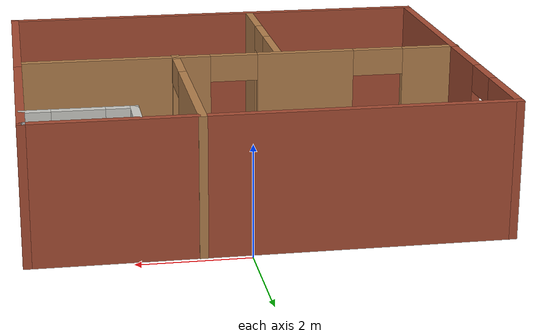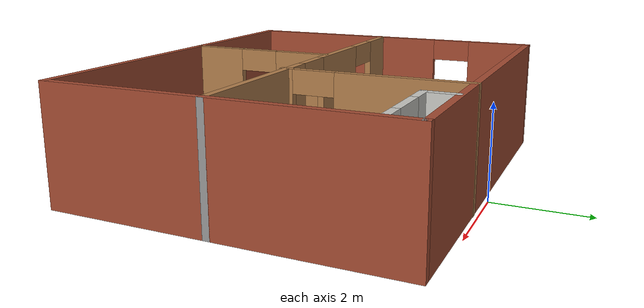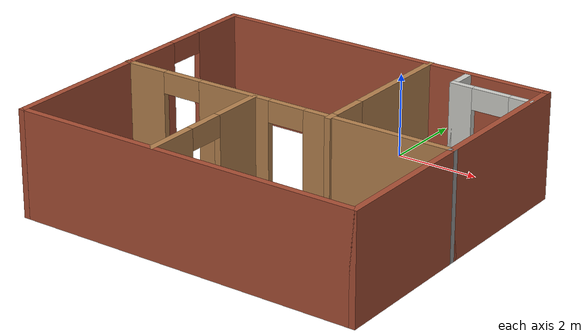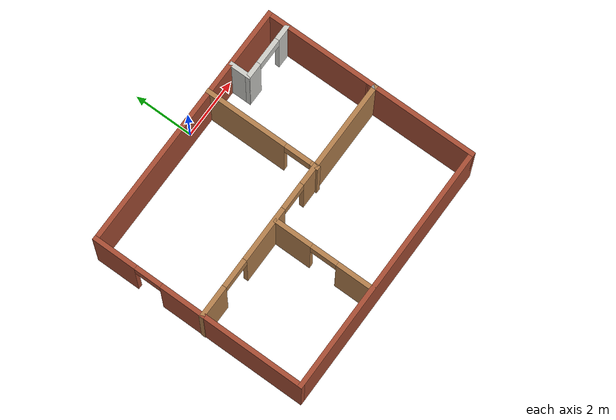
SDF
<?xml version='1.0'?>
<sdf version='1.7'>
  <model name='apartment_1'>
    <pose>-0.423745 -3.7226 0 0 -0 0</pose>
    <link name='Wall_0'>
      <pose>-4.16625 1.66258 0 0 -0 1.5708</pose>
      <visual name='Wall_0_Visual_0'>
        <pose>-1.19622 0 1.25 0 -0 0</pose>
        <geometry>
          <box>
            <size>1.53796 0.15 2.5</size>
          </box>
        </geometry>
        <material>
          <script>
            <uri>file://media/materials/scripts/gazebo.material</uri>
            <name>Gazebo/Bricks</name>
          </script>
          <ambient>1 1 1 1</ambient>
        </material>
        <meta>
          <layer>0</layer>
        </meta>
      </visual>
      <collision name='Wall_0_Collision_0'>
        <geometry>
          <box>
            <size>1.53796 0.15 2.5</size>
          </box>
        </geometry>
        <pose>-1.19622 0 1.25 0 -0 0</pose>
      </collision>
      <visual name='Wall_0_Visual_1'>
        <pose>1.21898 0 1.25 0 -0 0</pose>
        <geometry>
          <box>
            <size>1.49244 0.15 2.5</size>
          </box>
        </geometry>
        <material>
          <script>
            <uri>file://media/materials/scripts/gazebo.material</uri>
            <name>Gazebo/Bricks</name>
          </script>
          <ambient>1 1 1 1</ambient>
        </material>
        <meta>
          <layer>0</layer>
        </meta>
      </visual>
      <collision name='Wall_0_Collision_1'>
        <geometry>
          <box>
            <size>1.49244 0.15 2.5</size>
          </box>
        </geometry>
        <pose>1.21898 0 1.25 0 -0 0</pose>
      </collision>
      <visual name='Wall_0_Visual_2'>
        <pose>0.022761 0 2.25 0 -0 0</pose>
        <geometry>
          <box>
            <size>0.9 0.15 0.5</size>
          </box>
        </geometry>
        <material>
          <script>
            <uri>file://media/materials/scripts/gazebo.material</uri>
            <name>Gazebo/Bricks</name>
          </script>
          <ambient>1 1 1 1</ambient>
        </material>
        <meta>
          <layer>0</layer>
        </meta>
      </visual>
      <collision name='Wall_0_Collision_2'>
        <geometry>
          <box>
            <size>0.9 0.15 0.5</size>
          </box>
        </geometry>
        <pose>0.022761 0 2.25 0 -0 0</pose>
      </collision>
    </link>
    <link name='Wall_1'>
      <collision name='Wall_1_Collision'>
        <geometry>
          <box>
            <size>0.15 0.15 2.5</size>
          </box>
        </geometry>
        <pose>0 0 1.25 0 -0 0</pose>
      </collision>
      <visual name='Wall_1_Visual'>
        <pose>0 0 1.25 0 -0 0</pose>
        <geometry>
          <box>
            <size>0.15 0.15 2.5</size>
          </box>
        </geometry>
        <material>
          <script>
            <uri>file://media/materials/scripts/gazebo.material</uri>
            <name>Gazebo/Grey</name>
          </script>
          <ambient>1 1 1 1</ambient>
        </material>
        <meta>
          <layer>0</layer>
        </meta>
      </visual>
      <pose>-4.16625 3.5526 0 0 -0 0</pose>
    </link>
    <link name='Wall_10'>
      <collision name='Wall_10_Collision'>
        <geometry>
          <box>
            <size>0.75 0.15 2.5</size>
          </box>
        </geometry>
        <pose>0 0 1.25 0 -0 0</pose>
      </collision>
      <visual name='Wall_10_Visual'>
        <pose>0 0 1.25 0 -0 0</pose>
        <geometry>
          <box>
            <size>0.75 0.15 2.5</size>
          </box>
        </geometry>
        <material>
          <script>
            <uri>file://media/materials/scripts/gazebo.material</uri>
            <name>Gazebo/CeilingTiled</name>
          </script>
          <ambient>1 1 1 1</ambient>
        </material>
        <meta>
          <layer>0</layer>
        </meta>
      </visual>
      <pose>2.29458 3.20473 0 0 -0 -1.5708</pose>
    </link>
    <link name='Wall_11'>
      <pose>3.21957 2.90473 0 0 -0 0</pose>
      <visual name='Wall_11_Visual_0'>
        <pose>-0.719786 0 1.25 0 -0 0</pose>
        <geometry>
          <box>
            <size>0.560428 0.15 2.5</size>
          </box>
        </geometry>
        <material>
          <script>
            <uri>file://media/materials/scripts/gazebo.material</uri>
            <name>Gazebo/CeilingTiled</name>
          </script>
          <ambient>1 1 1 1</ambient>
        </material>
        <meta>
          <layer>0</layer>
        </meta>
      </visual>
      <collision name='Wall_11_Collision_0'>
        <geometry>
          <box>
            <size>0.560428 0.15 2.5</size>
          </box>
        </geometry>
        <pose>-0.719786 0 1.25 0 -0 0</pose>
      </collision>
      <visual name='Wall_11_Visual_1'>
        <pose>0.730214 0 1.25 0 -0 0</pose>
        <geometry>
          <box>
            <size>0.539572 0.15 2.5</size>
          </box>
        </geometry>
        <material>
          <script>
            <uri>file://media/materials/scripts/gazebo.material</uri>
            <name>Gazebo/CeilingTiled</name>
          </script>
          <ambient>1 1 1 1</ambient>
        </material>
        <meta>
          <layer>0</layer>
        </meta>
      </visual>
      <collision name='Wall_11_Collision_1'>
        <geometry>
          <box>
            <size>0.539572 0.15 2.5</size>
          </box>
        </geometry>
        <pose>0.730214 0 1.25 0 -0 0</pose>
      </collision>
      <visual name='Wall_11_Visual_2'>
        <pose>0.010428 0 2.25 0 -0 0</pose>
        <geometry>
          <box>
            <size>0.9 0.15 0.5</size>
          </box>
        </geometry>
        <material>
          <script>
            <uri>file://media/materials/scripts/gazebo.material</uri>
            <name>Gazebo/CeilingTiled</name>
          </script>
          <ambient>1 1 1 1</ambient>
        </material>
        <meta>
          <layer>0</layer>
        </meta>
      </visual>
      <collision name='Wall_11_Collision_2'>
        <geometry>
          <box>
            <size>0.9 0.15 0.5</size>
          </box>
        </geometry>
        <pose>0.010428 0 2.25 0 -0 0</pose>
      </collision>
    </link>
    <link name='Wall_13'>
      <pose>1.24132 1.63688 0 0 -0 1.5708</pose>
      <visual name='Wall_13_Visual_0'>
        <pose>-1.85587 0 1.25 0 -0 0</pose>
        <geometry>
          <box>
            <size>0.28827 0.15 2.5</size>
          </box>
        </geometry>
        <material>
          <script>
            <uri>file://media/materials/scripts/gazebo.material</uri>
            <name>Gazebo/Wood</name>
          </script>
          <ambient>1 1 1 1</ambient>
        </material>
        <meta>
          <layer>0</layer>
        </meta>
      </visual>
      <collision name='Wall_13_Collision_0'>
        <geometry>
          <box>
            <size>0.28827 0.15 2.5</size>
          </box>
        </geometry>
        <pose>-1.85587 0 1.25 0 -0 0</pose>
      </collision>
      <visual name='Wall_13_Visual_1'>
        <pose>0.594135 0 1.25 0 -0 0</pose>
        <geometry>
          <box>
            <size>2.81173 0.15 2.5</size>
          </box>
        </geometry>
        <material>
          <script>
            <uri>file://media/materials/scripts/gazebo.material</uri>
            <name>Gazebo/Wood</name>
          </script>
          <ambient>1 1 1 1</ambient>
        </material>
        <meta>
          <layer>0</layer>
        </meta>
      </visual>
      <collision name='Wall_13_Collision_1'>
        <geometry>
          <box>
            <size>2.81173 0.15 2.5</size>
          </box>
        </geometry>
        <pose>0.594135 0 1.25 0 -0 0</pose>
      </collision>
      <visual name='Wall_13_Visual_2'>
        <pose>-1.26173 0 2.25 0 -0 0</pose>
        <geometry>
          <box>
            <size>0.9 0.15 0.5</size>
          </box>
        </geometry>
        <material>
          <script>
            <uri>file://media/materials/scripts/gazebo.material</uri>
            <name>Gazebo/Wood</name>
          </script>
          <ambient>1 1 1 1</ambient>
        </material>
        <meta>
          <layer>0</layer>
        </meta>
      </visual>
      <collision name='Wall_13_Collision_2'>
        <geometry>
          <box>
            <size>0.9 0.15 0.5</size>
          </box>
        </geometry>
        <pose>-1.26173 0 2.25 0 -0 0</pose>
      </collision>
    </link>
    <link name='Wall_15'>
      <collision name='Wall_15_Collision'>
        <geometry>
          <box>
            <size>3.57036 0.15 2.5</size>
          </box>
        </geometry>
        <pose>0 0 1.25 0 -0 0</pose>
      </collision>
      <visual name='Wall_15_Visual'>
        <pose>0 0 1.25 0 -0 0</pose>
        <geometry>
          <box>
            <size>3.57036 0.15 2.5</size>
          </box>
        </geometry>
        <material>
          <script>
            <uri>file://media/materials/scripts/gazebo.material</uri>
            <name>Gazebo/Bricks</name>
          </script>
          <ambient>1 1 1 1</ambient>
        </material>
        <meta>
          <layer>0</layer>
        </meta>
      </visual>
      <pose>-4.16625 -1.93742 0 0 -0 -1.5708</pose>
    </link>
    <link name='Wall_16'>
      <collision name='Wall_16_Collision'>
        <geometry>
          <box>
            <size>8.5 0.15 2.5</size>
          </box>
        </geometry>
        <pose>0 0 1.25 0 -0 0</pose>
      </collision>
      <visual name='Wall_16_Visual'>
        <pose>0 0 1.25 0 -0 0</pose>
        <geometry>
          <box>
            <size>8.5 0.15 2.5</size>
          </box>
        </geometry>
        <material>
          <script>
            <uri>file://media/materials/scripts/gazebo.material</uri>
            <name>Gazebo/Bricks</name>
          </script>
          <ambient>1 1 1 1</ambient>
        </material>
        <meta>
          <layer>0</layer>
        </meta>
      </visual>
      <pose>0.008745 -3.6474 0 0 -0 0</pose>
    </link>
    <link name='Wall_17'>
      <collision name='Wall_17_Collision'>
        <geometry>
          <box>
            <size>3.75 0.15 2.5</size>
          </box>
        </geometry>
        <pose>0 0 1.25 0 -0 0</pose>
      </collision>
      <visual name='Wall_17_Visual'>
        <pose>0 0 1.25 0 -0 0</pose>
        <geometry>
          <box>
            <size>3.75 0.15 2.5</size>
          </box>
        </geometry>
        <material>
          <script>
            <uri>file://media/materials/scripts/gazebo.material</uri>
            <name>Gazebo/Bricks</name>
          </script>
          <ambient>1 1 1 1</ambient>
        </material>
        <meta>
          <layer>0</layer>
        </meta>
      </visual>
      <pose>4.18375 -1.8474 0 0 -0 1.5708</pose>
    </link>
    <link name='Wall_2'>
      <collision name='Wall_2_Collision'>
        <geometry>
          <box>
            <size>8.5 0.15 2.5</size>
          </box>
        </geometry>
        <pose>0 0 1.25 0 -0 0</pose>
      </collision>
      <visual name='Wall_2_Visual'>
        <pose>0 0 1.25 0 -0 0</pose>
        <geometry>
          <box>
            <size>8.5 0.15 2.5</size>
          </box>
        </geometry>
        <material>
          <script>
            <uri>file://media/materials/scripts/gazebo.material</uri>
            <name>Gazebo/Bricks</name>
          </script>
          <ambient>1 1 1 1</ambient>
        </material>
        <meta>
          <layer>0</layer>
        </meta>
      </visual>
      <pose>0.008745 3.5526 0 0 -0 0</pose>
    </link>
    <link name='Wall_21'>
      <pose>-0.721815 -1.97231 0 0 -0 -1.5708</pose>
      <visual name='Wall_21_Visual_0'>
        <pose>-1.09832 0 1.25 0 -0 0</pose>
        <geometry>
          <box>
            <size>1.30336 0.15 2.5</size>
          </box>
        </geometry>
        <material>
          <script>
            <uri>file://media/materials/scripts/gazebo.material</uri>
            <name>Gazebo/Wood</name>
          </script>
          <ambient>1 1 1 1</ambient>
        </material>
        <meta>
          <layer>0</layer>
        </meta>
      </visual>
      <collision name='Wall_21_Collision_0'>
        <geometry>
          <box>
            <size>1.30336 0.15 2.5</size>
          </box>
        </geometry>
        <pose>-1.09832 0 1.25 0 -0 0</pose>
      </collision>
      <visual name='Wall_21_Visual_1'>
        <pose>1.10168 0 1.25 0 -0 0</pose>
        <geometry>
          <box>
            <size>1.29665 0.15 2.5</size>
          </box>
        </geometry>
        <material>
          <script>
            <uri>file://media/materials/scripts/gazebo.material</uri>
            <name>Gazebo/Wood</name>
          </script>
          <ambient>1 1 1 1</ambient>
        </material>
        <meta>
          <layer>0</layer>
        </meta>
      </visual>
      <collision name='Wall_21_Collision_1'>
        <geometry>
          <box>
            <size>1.29665 0.15 2.5</size>
          </box>
        </geometry>
        <pose>1.10168 0 1.25 0 -0 0</pose>
      </collision>
      <visual name='Wall_21_Visual_2'>
        <pose>0.003355 0 2.25 0 -0 0</pose>
        <geometry>
          <box>
            <size>0.9 0.15 0.5</size>
          </box>
        </geometry>
        <material>
          <script>
            <uri>file://media/materials/scripts/gazebo.material</uri>
            <name>Gazebo/Wood</name>
          </script>
          <ambient>1 1 1 1</ambient>
        </material>
        <meta>
          <layer>0</layer>
        </meta>
      </visual>
      <collision name='Wall_21_Collision_2'>
        <geometry>
          <box>
            <size>0.9 0.15 0.5</size>
          </box>
        </geometry>
        <pose>0.003355 0 2.25 0 -0 0</pose>
      </collision>
    </link>
    <link name='Wall_3'>
      <collision name='Wall_3_Collision'>
        <geometry>
          <box>
            <size>0.15 0.15 2.5</size>
          </box>
        </geometry>
        <pose>0 0 1.25 0 -0 0</pose>
      </collision>
      <visual name='Wall_3_Visual'>
        <pose>0 0 1.25 0 -0 0</pose>
        <geometry>
          <box>
            <size>0.15 0.15 2.5</size>
          </box>
        </geometry>
        <material>
          <script>
            <uri>file://media/materials/scripts/gazebo.material</uri>
            <name>Gazebo/Grey</name>
          </script>
          <ambient>1 1 1 1</ambient>
        </material>
        <meta>
          <layer>0</layer>
        </meta>
      </visual>
      <pose>4.18375 3.5526 0 0 -0 0</pose>
    </link>
    <link name='Wall_4'>
      <collision name='Wall_4_Collision'>
        <geometry>
          <box>
            <size>3.9304 0.15 2.5</size>
          </box>
        </geometry>
        <pose>0 0 1.25 0 -0 0</pose>
      </collision>
      <visual name='Wall_4_Visual'>
        <pose>0 0 1.25 0 -0 0</pose>
        <geometry>
          <box>
            <size>3.9304 0.15 2.5</size>
          </box>
        </geometry>
        <material>
          <script>
            <uri>file://media/materials/scripts/gazebo.material</uri>
            <name>Gazebo/Bricks</name>
          </script>
          <ambient>1 1 1 1</ambient>
        </material>
        <meta>
          <layer>0</layer>
        </meta>
      </visual>
      <pose>4.18375 1.66258 0 0 -0 -1.5708</pose>
    </link>
    <link name='Wall_5'>
      <collision name='Wall_5_Collision'>
        <geometry>
          <box>
            <size>0.15 0.15 2.5</size>
          </box>
        </geometry>
        <pose>0 0 1.25 0 -0 0</pose>
      </collision>
      <visual name='Wall_5_Visual'>
        <pose>0 0 1.25 0 -0 0</pose>
        <geometry>
          <box>
            <size>0.15 0.15 2.5</size>
          </box>
        </geometry>
        <material>
          <script>
            <uri>file://media/materials/scripts/gazebo.material</uri>
            <name>Gazebo/Grey</name>
          </script>
          <ambient>1 1 1 1</ambient>
        </material>
        <meta>
          <layer>0</layer>
        </meta>
      </visual>
      <pose>4.18375 -0.227439 0 0 -0 0</pose>
    </link>
    <link name='Wall_6'>
      <pose>-0.008745 -0.227439 0 0 -0 3.14159</pose>
      <visual name='Wall_6_Visual_0'>
        <pose>-2.42244 0 1.25 0 -0 0</pose>
        <geometry>
          <box>
            <size>3.65513 0.15 2.5</size>
          </box>
        </geometry>
        <material>
          <script>
            <uri>file://media/materials/scripts/gazebo.material</uri>
            <name>Gazebo/Wood</name>
          </script>
          <ambient>1 1 1 1</ambient>
        </material>
        <meta>
          <layer>0</layer>
        </meta>
      </visual>
      <collision name='Wall_6_Collision_0'>
        <geometry>
          <box>
            <size>3.65513 0.15 2.5</size>
          </box>
        </geometry>
        <pose>-2.42244 0 1.25 0 -0 0</pose>
      </collision>
      <visual name='Wall_6_Visual_1'>
        <pose>1.23382 0 1.25 0 -0 0</pose>
        <geometry>
          <box>
            <size>1.85737 0.15 2.5</size>
          </box>
        </geometry>
        <material>
          <script>
            <uri>file://media/materials/scripts/gazebo.material</uri>
            <name>Gazebo/Wood</name>
          </script>
          <ambient>1 1 1 1</ambient>
        </material>
        <meta>
          <layer>0</layer>
        </meta>
      </visual>
      <collision name='Wall_6_Collision_1'>
        <geometry>
          <box>
            <size>1.85737 0.15 2.5</size>
          </box>
        </geometry>
        <pose>1.23382 0 1.25 0 -0 0</pose>
      </collision>
      <visual name='Wall_6_Visual_2'>
        <pose>3.69123 0 1.25 0 -0 0</pose>
        <geometry>
          <box>
            <size>1.11753 0.15 2.5</size>
          </box>
        </geometry>
        <material>
          <script>
            <uri>file://media/materials/scripts/gazebo.material</uri>
            <name>Gazebo/Wood</name>
          </script>
          <ambient>1 1 1 1</ambient>
        </material>
        <meta>
          <layer>0</layer>
        </meta>
      </visual>
      <collision name='Wall_6_Collision_2'>
        <geometry>
          <box>
            <size>1.11753 0.15 2.5</size>
          </box>
        </geometry>
        <pose>3.69123 0 1.25 0 -0 0</pose>
      </collision>
      <visual name='Wall_6_Visual_3'>
        <pose>-0.144869 0 2.25 0 -0 0</pose>
        <geometry>
          <box>
            <size>0.9 0.15 0.5</size>
          </box>
        </geometry>
        <material>
          <script>
            <uri>file://media/materials/scripts/gazebo.material</uri>
            <name>Gazebo/Wood</name>
          </script>
          <ambient>1 1 1 1</ambient>
        </material>
        <meta>
          <layer>0</layer>
        </meta>
      </visual>
      <collision name='Wall_6_Collision_3'>
        <geometry>
          <box>
            <size>0.9 0.15 0.5</size>
          </box>
        </geometry>
        <pose>-0.144869 0 2.25 0 -0 0</pose>
      </collision>
      <visual name='Wall_6_Visual_4'>
        <pose>2.64749 0 2.25 0 -0 0</pose>
        <geometry>
          <box>
            <size>0.96996 0.15 0.5</size>
          </box>
        </geometry>
        <material>
          <script>
            <uri>file://media/materials/scripts/gazebo.material</uri>
            <name>Gazebo/Wood</name>
          </script>
          <ambient>1 1 1 1</ambient>
        </material>
        <meta>
          <layer>0</layer>
        </meta>
      </visual>
      <collision name='Wall_6_Collision_4'>
        <geometry>
          <box>
            <size>0.96996 0.15 0.5</size>
          </box>
        </geometry>
        <pose>2.64749 0 2.25 0 -0 0</pose>
      </collision>
    </link>
    <static>1</static>
  </model>
</sdf>
